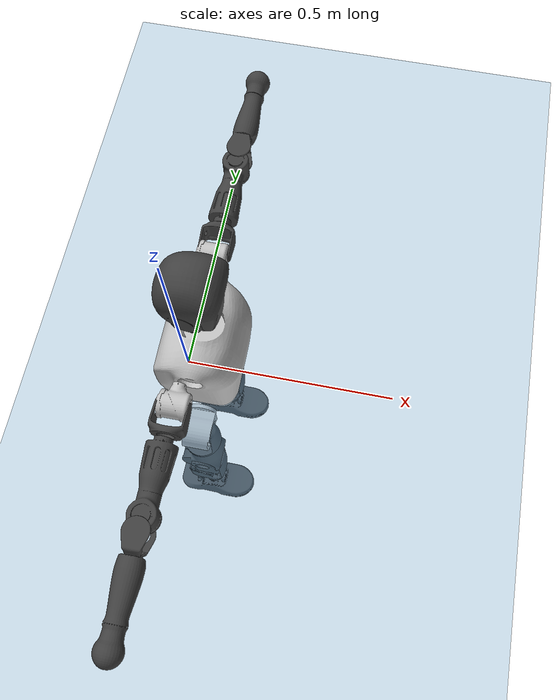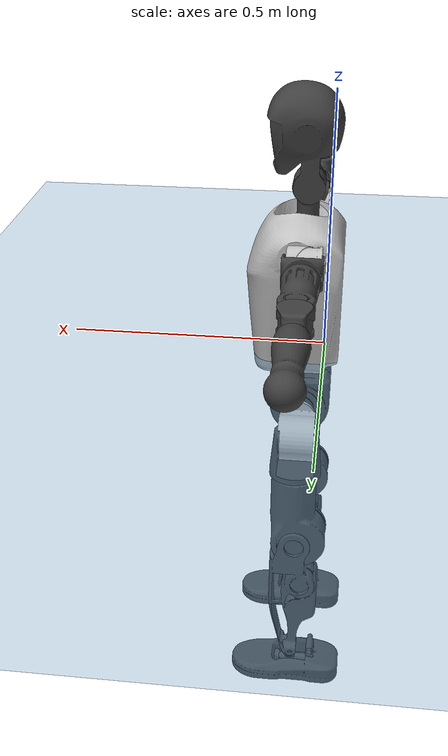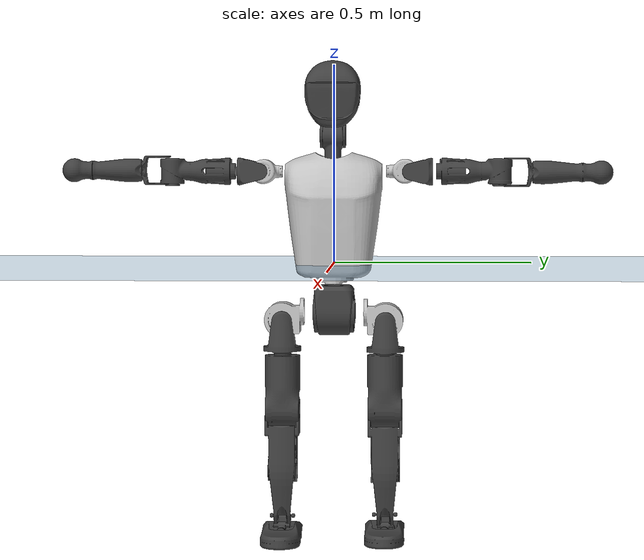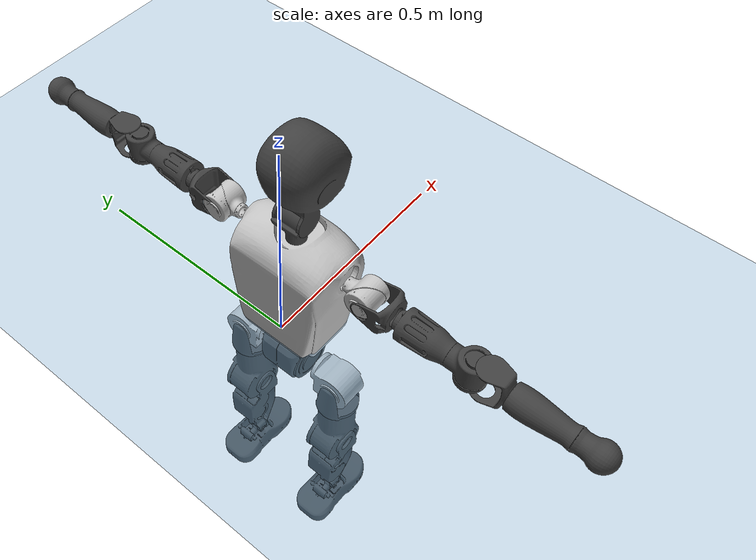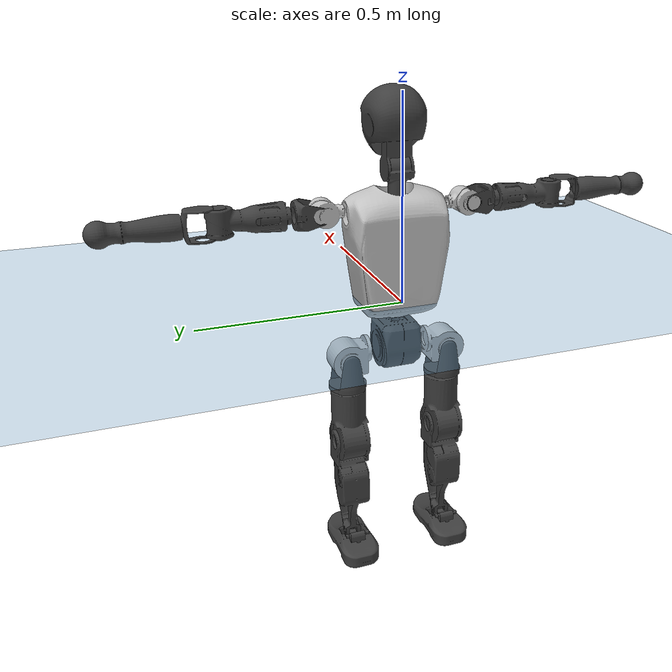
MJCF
<mujoco model="T1">
  <compiler angle="radian" assetdir="assets" balanceinertia="true" inertiafromgeom="false"/>

  <option timestep="0.005" density="1.2" viscosity="2e-05"/>

  <size nkey="1"/>

  <visual>
    <quality shadowsize="8192"/>
    <map shadowclip="0.5"/>
  </visual>

  <default>
    <default class="/">
      <joint armature="0.01" damping="0.01" frictionloss="0.1"/>
      <geom contype="0" conaffinity="0" group="1" solref="-1000 -80"/>
      <site size="0.01 0.005 0.005" group="5"/>
      <general forcelimited="true" biastype="affine" gainprm="25" biasprm="0 -25 -0.6"/>
      <default class="t1">
        <geom rgba="0.25 0.25 0.25 1"/>
        <default class="visual">
          <geom type="mesh" group="2"/>
        </default>
        <default class="collision">
          <geom group="3"/>
        </default>
        <default class="foot">
          <geom size="0.1115 0.05 0.015" type="box" condim="6" group="4" priority="1" solimp="0.015 1 0.015"/>
        </default>
        <default class="reward_collision_sphere">
          <geom group="5" rgba="1 0 0 1"/>
        </default>
      </default>
    </default>
  </default>

  <asset>
    <texture type="skybox" colorspace="auto" name="//unnamed_texture_0" builtin="gradient" rgb1="0.95 0.95 0.95" rgb2="0.95 0.95 0.95" width="100" height="600"/>
    <texture type="2d" colorspace="auto" name="texplane" builtin="checker" rgb1="0.345 0.575 0.748" rgb2="0.345 0.575 0.748" markrgb="1 1 1" width="512" height="512"/>
    <material name="MatPlane" class="/" texture="texplane" texuniform="true" texrepeat="2 2" specular="0.9"/>
    <mesh name="Trunk" class="/" file="Trunk.stl"/>
    <mesh name="H1" class="/" file="H1.stl"/>
    <mesh name="H2" class="/" file="H2.stl"/>
    <mesh name="AL1" class="/" file="AL1.stl"/>
    <mesh name="AL2" class="/" file="AL2.stl"/>
    <mesh name="AL3" class="/" file="AL3.stl"/>
    <mesh name="left_hand_link" class="/" file="left_hand_link.stl"/>
    <mesh name="AR1" class="/" file="AR1.stl"/>
    <mesh name="AR2" class="/" file="AR2.stl"/>
    <mesh name="AR3" class="/" file="AR3.stl"/>
    <mesh name="right_hand_link" class="/" file="right_hand_link.stl"/>
    <mesh name="Waist" class="/" file="Waist.stl"/>
    <mesh name="Hip_Pitch_Left" class="/" file="Hip_Pitch_Left.stl"/>
    <mesh name="Hip_Roll_Left" class="/" file="Hip_Roll_Left.stl"/>
    <mesh name="Hip_Yaw_Left" class="/" file="Hip_Yaw_Left.stl"/>
    <mesh name="Shank_Left" class="/" file="Shank_Left.stl"/>
    <mesh name="Ankle_Cross_Left" class="/" file="Ankle_Cross_Left.stl"/>
    <mesh name="left_foot_link" class="/" file="left_foot_link.stl"/>
    <mesh name="Hip_Pitch_Right" class="/" file="Hip_Pitch_Right.stl"/>
    <mesh name="Hip_Roll_Right" class="/" file="Hip_Roll_Right.stl"/>
    <mesh name="Hip_Yaw_Right" class="/" file="Hip_Yaw_Right.stl"/>
    <mesh name="Shank_Right" class="/" file="Shank_Right.stl"/>
    <mesh name="Ankle_Cross_Right" class="/" file="Ankle_Cross_Right.stl"/>
    <mesh name="right_foot_link" class="/" file="right_foot_link.stl"/>
  </asset>

  <worldbody>
    <geom name="floor" class="/" size="100 100 0.125" type="plane" group="0" material="MatPlane"/>
    <light name="toplight_shadow" class="/" pos="0 0 5" dir="0.0990148 0.0990148 -0.990148" type="directional" ambient="0.04 0.04 0.04" diffuse="0.55 0.55 0.55" specular="0.12 0.12 0.12"/>
    <light name="toplight_fill" class="/" pos="0 0 5" dir="0.0990148 0.0990148 -0.990148" type="directional" castshadow="false" ambient="0.04 0.04 0.04" diffuse="0.3 0.3 0.3" specular="0.08 0.08 0.08"/>
    <body name="trunk" childclass="t1" pos="-0.000157538 0.000786063 0.000939344" quat="1 -6.1891e-06 -0.000102619 3.88444e-05">
      <inertial pos="0.0385554 0.00229466 0.113251" quat="0.999967 0.00352109 -0.00648347 -0.00352367" mass="11.6649" diaginertia="0.0154379 0.220379 0.0735805"/>
      <joint name="//unnamed_joint_0" type="free" armature="0" damping="0" frictionloss="0"/>
      <geom name="//unnamed_geom_1" class="visual" rgba="0.76 0.76 0.76 1" mesh="Trunk"/>
      <geom name="//unnamed_geom_2" class="collision" size="0.0747203 0.0996271 0.149441" pos="0.0420232 0 0.126545" type="box"/>
      <geom name="//unnamed_geom_3" class="reward_collision_sphere" size="0.114571" pos="0.0420232 0 0.105455"/>
      <geom name="//unnamed_geom_4" class="reward_collision_sphere" size="0.0149441" pos="0.0420232 0.10488 0"/>
      <geom name="//unnamed_geom_5" class="reward_collision_sphere" size="0.0149441" pos="0.0420232 -0.10488 0"/>
      <geom name="//unnamed_geom_6" class="reward_collision_sphere" size="0.0149441" pos="0.0420232 0.132025 0.189818"/>
      <geom name="//unnamed_geom_7" class="reward_collision_sphere" size="0.0149441" pos="0.0420232 -0.132025 0.189818"/>
      <site name="imu" pos="-0.00249793 0.000609806 -0.00527642" size="0.00996271"/>
      <camera name="track" pos="0 -2.46776 0" quat="0.707107 0.707107 0 0" mode="trackcom"/>
      <camera name="ego_camera" pos="0.0854473 0 0.442909" quat="-0.5 -0.5 0.5 0.5"/>
      <body name="H1" pos="0.0436791 -0.00250972 0.258113" quat="1 4.26193e-05 3.5402e-06 -2.20669e-06">
        <inertial pos="-0.000804447 0.000795452 0.0611863" quat="0.763135 -0.0203646 -0.00748324 0.645875" mass="0.426462" diaginertia="3.95211e-05 0.000622004 0.000196797"/>
        <joint name="AAHead_yaw" pos="0 0 0" axis="0.00011239 -0.00283407 0.999996" range="-1.57123 1.52102" armature="0.00978551" damping="0.0194306" frictionloss="0.086533"/>
        <geom name="//unnamed_geom_8" class="visual" mesh="H1"/>
        <body name="H2" pos="-0.00136218 0.000645406 0.0627916" quat="1 -9.62408e-05 0.00014273 -0.000232639">
          <inertial pos="0.00590683 -0.00123345 0.104996" quat="0.990275 0.0989528 -0.0670944 -0.0711485" mass="0.629824" diaginertia="0.000342984 0.00554733 0.00230926"/>
          <joint name="Head_pitch" pos="0 0 0" axis="0.00462998 -0.999988 0.00151102" range="-1.23297 0.347669" armature="0.0100688" damping="0.0113457" frictionloss="0.094357"/>
          <geom name="//unnamed_geom_9" class="visual" mesh="H2"/>
          <geom name="//unnamed_geom_10" class="collision" size="0.0797017" pos="0.00700387 0 0.116"/>
          <geom name="//unnamed_geom_11" class="reward_collision_sphere" size="0.0896644" pos="0.0140077 0 0.105455"/>
        </body>
      </body>
      <body name="AL1" pos="0.0401582 0.132251 0.231148" quat="0.999999 -0.00109404 -8.73189e-05 -0.000569713">
        <inertial pos="-0.000476002 0.0554776 0.0002641" quat="0.500374 0.494241 -0.498766 0.506541" mass="0.519744" diaginertia="0.000227436 0.00380655 0.000383159"/>
        <joint name="Left_Shoulder_Pitch" pos="0 0 0" axis="9.5154e-05 1 0.000267536" stiffness="0.00348469" range="-3.33009 1.26417" armature="0.00991079" damping="0.0124528" frictionloss="0.100092"/>
        <geom name="//unnamed_geom_12" class="visual" rgba="0.76 0.76 0.76 1" mesh="AL1"/>
        <body name="AL2" pos="0.000829975 0.0610013 -0.000946543" quat="1 -0.000375697 -0.000199405 0.000106731">
          <inertial pos="0.00525643 0.0493709 0.000257979" quat="0.49875 0.507269 -0.481789 0.51167" mass="0.158682" diaginertia="6.81957e-05 0.000994616 0.000238908"/>
          <joint name="Left_Shoulder_Roll" pos="0 0 0" axis="-0.999996 -0.00265833 -0.000192828" stiffness="0.00115266" range="-1.57488 1.73974" armature="0.00930752" damping="0.0108958" frictionloss="0.104061"/>
          <geom name="//unnamed_geom_13" class="visual" mesh="AL2"/>
          <body name="AL3" pos="0.000401918 0.0776539 0.00111562" quat="1 -3.19614e-05 4.93115e-05 9.50923e-05">
            <inertial pos="-0.00274842 0.105863 -0.000877095" quat="0.70942 0.704777 0.00326548 0.00165284" mass="1.05647" diaginertia="0.00225491 0.0372019 0.000819965"/>
            <joint name="Left_Elbow_Pitch" pos="0 0 0" axis="0.000459617 -1 -0.000591297" range="-2.28268 2.31907" armature="0.0103877" damping="0.0174761" frictionloss="0.0988741"/>
            <geom name="//unnamed_geom_14" class="visual" mesh="AL3"/>
            <geom name="//unnamed_geom_15" class="collision" size="0.0298881 0.0747203" pos="0 0.0616941 0" quat="0.707105 0.707108 0 0" type="cylinder"/>
            <geom name="//unnamed_geom_16" class="reward_collision_sphere" size="0.0358658"/>
            <body name="left_hand_link" pos="6.52954e-05 0.184465 -0.00191295" quat="1 -6.0288e-05 -0.000184146 0.000103839">
              <inertial pos="0.000476624 0.135439 0.00101215" quat="0.707968 0.706223 -0.00227275 -0.00496389" mass="0.321517" diaginertia="0.00134039 0.0231625 0.000281386"/>
              <joint name="Left_Elbow_Yaw" pos="0 0 0" axis="-0.00798067 0.00129074 0.999967" stiffness="0.00902866" range="-2.49469 -0.0126602" armature="0.0101106" damping="0" frictionloss="0.10907"/>
              <geom name="//unnamed_geom_17" class="visual" mesh="left_hand_link"/>
              <geom name="//unnamed_geom_18" class="collision" size="0.0298881 0.0871737" pos="0 0.160405 0" quat="0.707105 0.707108 0 0" type="cylinder"/>
              <geom name="//unnamed_geom_19" class="reward_collision_sphere" size="0.0498136"/>
              <geom name="//unnamed_geom_20" class="reward_collision_sphere" size="0.0348695" pos="0 0.135727 0"/>
              <geom name="//unnamed_geom_21" class="reward_collision_sphere" size="0.0348695" pos="0 0.265284 0"/>
            </body>
          </body>
        </body>
      </body>
      <body name="AR1" pos="0.0385971 -0.130418 0.229984" quat="1 -0.000136688 3.05844e-05 3.92615e-05">
        <inertial pos="-0.0017051 -0.0555018 -0.00267208" quat="0.51141 0.48594 -0.502932 0.499381" mass="0.534542" diaginertia="0.000229072 0.00366609 0.000385192"/>
        <joint name="Right_Shoulder_Pitch" pos="0 0 0" axis="0.00250244 -0.999996 0.00135634" stiffness="0.00780105" range="-1.22754 3.31007" armature="0.0100486" damping="0" frictionloss="0.0865221"/>
        <geom name="//unnamed_geom_22" class="visual" rgba="0.76 0.76 0.76 1" mesh="AR1"/>
        <body name="AR2" pos="-0.00201071 -0.0571401 0.000183815" quat="1 5.39187e-05 3.91772e-05 -4.0698e-05">
          <inertial pos="0.00216833 -0.049421 -0.000700698" quat="0.519946 0.489746 -0.502124 0.487521" mass="0.157241" diaginertia="6.73858e-05 0.000973995 0.000230563"/>
          <joint name="Right_Shoulder_Roll" pos="0 0 0" axis="-0.999993 -0.00332334 -0.00150789" stiffness="0.00728031" range="-1.73626 1.57255" armature="0.0100474" damping="0" frictionloss="0.0943641"/>
          <geom name="//unnamed_geom_23" class="visual" mesh="AR2"/>
          <body name="AR3" pos="-0.00145245 -0.0743373 0.000344014" quat="1 -0.000166279 -4.48612e-05 0.000340617">
            <inertial pos="-0.00132002 -0.105535 0.000886775" quat="0.708468 0.705725 0.00379343 0.00332854" mass="1.01713" diaginertia="0.0021888 0.0356681 0.000825198"/>
            <joint name="Right_Elbow_Pitch" pos="0 0 0" axis="-0.00227763 0.999993 0.00301908" range="-2.26674 2.24668" armature="0.00986712" damping="0.00871239" frictionloss="0.0956018"/>
            <geom name="//unnamed_geom_24" class="visual" mesh="AR3"/>
            <geom name="//unnamed_geom_25" class="collision" size="0.0298881 0.0747203" pos="0 -0.0616941 0" quat="0.707105 0.707108 0 0" type="cylinder"/>
            <geom name="//unnamed_geom_26" class="reward_collision_sphere" size="0.0358658"/>
            <body name="right_hand_link" pos="-0.00140519 -0.179358 0.00225507" quat="1 0.000322871 -0.000292131 -0.000421649">
              <inertial pos="-0.000326988 -0.133745 5.63783e-05" quat="0.708188 0.706012 0.0040718 -0.000240844" mass="0.329492" diaginertia="0.00136662 0.0230951 0.000282243"/>
              <joint name="Right_Elbow_Yaw" pos="0 0 0" axis="-0.0019202 0.00022458 0.999998" range="0.0181916 2.4373" armature="0.00976042" damping="0.00806865" frictionloss="0.112497"/>
              <geom name="//unnamed_geom_27" class="visual" mesh="right_hand_link"/>
              <geom name="//unnamed_geom_28" class="collision" size="0.0298881 0.0871737" pos="0 -0.160405 0" quat="0.707105 0.707108 0 0" type="cylinder"/>
              <geom name="//unnamed_geom_29" class="reward_collision_sphere" size="0.0498136"/>
              <geom name="//unnamed_geom_30" class="reward_collision_sphere" size="0.0348695" pos="0 -0.135727 0"/>
              <geom name="//unnamed_geom_31" class="reward_collision_sphere" size="0.0348695" pos="0 -0.265284 0"/>
            </body>
          </body>
        </body>
      </body>
      <body name="Waist" pos="0.0424771 0.000678536 -0.123744" quat="1 -2.10004e-05 -4.79845e-05 -2.11279e-05">
        <inertial pos="-0.00125758 -0.00146376 0.00687544" quat="0.983691 0.000151759 -0.179849 0.00264143" mass="2.48158" diaginertia="0.00086858 0.0149453 0.00607659"/>
        <joint name="Waist" pos="0 0 0" axis="0.00205927 -0.00478053 0.999986" stiffness="0.00207354" range="-1.57849 1.56246" armature="0.0105824" damping="0.0161357" frictionloss="0.10001"/>
        <geom name="//unnamed_geom_32" class="visual" mesh="Waist"/>
        <body name="Hip_Pitch_Left" pos="-0.000408927 0.130275 -0.00203918" quat="1 -7.1059e-05 0.00027442 0.000125866">
          <inertial pos="0.000512829 -0.00733983 -0.0179903" quat="0.974862 0.222429 0.0127149 0.00272889" mass="1.03836" diaginertia="0.000303881 0.00422061 0.00162269"/>
          <joint name="Left_Hip_Pitch" pos="0 0 0" axis="0.00317279 0.999995 0.000135659" stiffness="0.000440253" range="-1.80015 1.62204" armature="0.0112315" damping="0.013806" frictionloss="0.0955123"/>
          <geom name="//unnamed_geom_33" class="visual" rgba="0.76 0.76 0.76 1" mesh="Hip_Pitch_Left"/>
          <body name="Hip_Roll_Left" pos="0.00235455 -0.000871419 -0.0228549" quat="1 0.00046666 0.000118474 6.64792e-05">
            <inertial pos="0.00106306 -0.000267005 -0.0568342" quat="0.703885 -0.0103188 -0.0176202 0.71002" mass="0.364402" diaginertia="0.000283217 0.00430482 0.000663781"/>
            <joint name="Left_Hip_Roll" pos="0 0 0" axis="-0.999959 -5.57426e-05 0.00909758" stiffness="0.0064177" range="-1.5696 0.18519" armature="0.0112175" damping="0.0169256" frictionloss="0.0972158"/>
            <geom name="//unnamed_geom_34" class="visual" mesh="Hip_Roll_Left"/>
            <geom name="//unnamed_geom_35" class="reward_collision_sphere" size="0.0547949"/>
            <body name="Hip_Yaw_Left" pos="-0.00113439 -0.00107744 -0.0842265" quat="1 0.000286662 6.52935e-05 -0.000219011">
              <inertial pos="-0.0070273 -0.00134663 -0.0934618" quat="0.69671 -0.0342578 -0.0314876 0.715843" mass="2.164" diaginertia="0.0043027 0.0698175 0.00335177"/>
              <joint name="Left_Hip_Yaw" pos="0 0 0" axis="0.0031149 0.00150176 -0.999994" stiffness="0.00295398" range="-1.01879 1.0552" armature="0.00987657" damping="0.00516833" frictionloss="0.101089"/>
              <geom name="//unnamed_geom_36" class="visual" mesh="Hip_Yaw_Left"/>
              <geom name="//unnamed_geom_37" class="collision" size="0.0498136 0.0797017" type="cylinder"/>
              <body name="Shank_Left" pos="-0.006886 -2.98932e-05 -0.142758" quat="1 3.71684e-05 -9.78735e-05 0.000127053">
                <inertial pos="-0.00344674 0.0026518 -0.128826" quat="0.997573 0.00141901 -0.0239519 0.0653595" mass="1.64449" diaginertia="0.00581165 0.0983551 0.00237761"/>
                <joint name="Left_Knee_Pitch" pos="0 0 0" axis="0.00315081 0.999989 -0.00360875" range="-0.00353771 2.34555" armature="0.00992932" damping="0.0117063" frictionloss="0.104668"/>
                <geom name="//unnamed_geom_38" class="visual" mesh="Shank_Left"/>
                <geom name="//unnamed_geom_39" class="collision" size="0.0498136 0.0747203" pos="0 0 -0.126545" type="cylinder"/>
                <geom name="//unnamed_geom_40" class="reward_collision_sphere" size="0.0647576"/>
                <body name="Ankle_Cross_Left" pos="-0.00100558 -7.9353e-05 -0.293588" quat="1 3.46895e-05 5.08787e-06 -2.47572e-05">
                  <inertial pos="-0.00209115 0.0016902 -0.00805286" quat="0.446975 0.550967 0.544458 0.447453" mass="0.0738546" diaginertia="5.01723e-06 7.24108e-05 1.47487e-05"/>
                  <joint name="Left_Ankle_Pitch" pos="0 0 0" axis="8.07177e-05 1 7.55933e-05" range="-0.818613 0.335504" armature="0.00989505" damping="0.015489" frictionloss="0.0945454"/>
                  <geom name="//unnamed_geom_41" class="visual" mesh="Ankle_Cross_Left"/>
                  <body name="left_foot_link" pos="0.0010495 -0.00137495 -0.0108" quat="1 5.3167e-05 0.000120545 8.608e-05">
                    <inertial pos="-0.00195211 -0.000185087 -0.0116682" quat="0.000259221 0.619242 -0.00470328 0.785186" mass="0.662027" diaginertia="0.000428026 0.00666935 0.00286124"/>
                    <joint name="Left_Ankle_Roll" pos="0 0 0" axis="-0.999999 -0.00121741 -0.00032113" range="-0.431503 0.439125" armature="0.0101002" damping="0.0162204" frictionloss="0.0998968"/>
                    <geom name="//unnamed_geom_42" class="visual" mesh="left_foot_link"/>
                    <geom name="left_foot" class="foot" size="0.104198 0.0486225 0.0154715" pos="0.00700387 0 -0.0158182"/>
                    <geom name="//unnamed_geom_44" class="reward_collision_sphere" size="0.0518061" pos="0.00700387 0 -0.0158182"/>
                    <geom name="//unnamed_geom_45" class="reward_collision_sphere" size="0.0298881" pos="0.0665368 -0.0283793 -0.0158182"/>
                    <geom name="//unnamed_geom_46" class="reward_collision_sphere" size="0.0298881" pos="-0.0490271 -0.0283793 -0.0158182"/>
                    <site name="left_foot" class="foot" pos="0.00700387 0 -0.0158182" size="0.00996271"/>
                  </body>
                </body>
              </body>
            </body>
          </body>
        </body>
        <body name="Hip_Pitch_Right" pos="-0.00030649 -0.13171 5.1435e-05" quat="1 -0.000583209 -0.000618706 -0.000485599">
          <inertial pos="-0.00164637 0.0103183 -0.0165062" quat="0.972652 -0.231467 0.0180616 -0.0067014" mass="1.02771" diaginertia="0.000309602 0.00431205 0.00160242"/>
          <joint name="Right_Hip_Pitch" pos="0 0 0" axis="-0.000956867 -0.999999 0.000434057" range="-1.5692 1.74583" armature="0.00934358" damping="0.0111308" frictionloss="0.0995178"/>
          <geom name="//unnamed_geom_47" class="visual" rgba="0.76 0.76 0.76 1" mesh="Hip_Pitch_Right"/>
          <body name="Hip_Roll_Right" pos="0.0022456 0.000465342 -0.0228241" quat="1 -0.000218995 -0.000170508 -5.12883e-06">
            <inertial pos="0.0011005 -0.00111561 -0.0554842" quat="0.71435 -0.0135539 -0.00323246 0.69965" mass="0.386719" diaginertia="0.000294398 0.00448869 0.000675689"/>
            <joint name="Right_Hip_Roll" pos="0 0 0" axis="-0.999989 -0.000960004 0.00454239" stiffness="0.000866486" range="-0.148598 1.59399" armature="0.0100504" damping="0.00820805" frictionloss="0.100745"/>
            <geom name="//unnamed_geom_48" class="visual" mesh="Hip_Roll_Right"/>
            <geom name="//unnamed_geom_49" class="reward_collision_sphere" size="0.0547949"/>
            <body name="Hip_Yaw_Right" pos="0.000967169 0.00102827 -0.087461" quat="1 -0.000402959 8.64603e-05 -1.61699e-05">
              <inertial pos="-0.00479275 -0.000781548 -0.0967334" quat="0.717557 -0.0324865 -0.0344976 0.694886" mass="2.0943" diaginertia="0.00431419 0.0720168 0.00330903"/>
              <joint name="Right_Hip_Yaw" pos="0 0 0" axis="0.00844226 0.0133184 -0.999876" stiffness="0.00402932" range="-1.00792 0.987839" armature="0.011091" damping="0" frictionloss="0.100037"/>
              <geom name="//unnamed_geom_50" class="visual" mesh="Hip_Yaw_Right"/>
              <geom name="//unnamed_geom_51" class="collision" size="0.0498136 0.0797017" type="cylinder"/>
              <body name="Shank_Right" pos="-0.00898683 -0.000647154 -0.139465" quat="1 0.000177523 4.4124e-05 0.000191894">
                <inertial pos="-0.00431164 -0.00103831 -0.131316" quat="0.99928 -0.000672276 -0.0236243 -0.0296902" mass="1.83293" diaginertia="0.00620363 0.102646 0.00263072"/>
                <joint name="Right_Knee_Pitch" pos="0 0 0" axis="-0.00344763 -0.999994 -0.000482047" range="-2.29023 -0.0154409" armature="0.0112427" damping="0.0141241" frictionloss="0.0993943"/>
                <geom name="//unnamed_geom_52" class="visual" mesh="Shank_Right"/>
                <geom name="//unnamed_geom_53" class="collision" size="0.0498136 0.0747203" pos="0 0 -0.126545" type="cylinder"/>
                <geom name="//unnamed_geom_54" class="reward_collision_sphere" size="0.0647576"/>
                <body name="Ankle_Cross_Right" pos="-0.000218236 -0.00147095 -0.296236" quat="1 -0.000173334 -4.60144e-05 -0.000102763">
                  <inertial pos="-0.00232859 -0.000758374 -0.00848949" quat="0.445041 0.549543 0.549061 0.445504" mass="0.0718653" diaginertia="4.99049e-06 7.48074e-05 1.47664e-05"/>
                  <joint name="Right_Ankle_Pitch" pos="0 0 0" axis="0.000132101 -0.999999 -0.00119212" range="-0.395364 0.821897" armature="0.00999089" damping="0.00875116" frictionloss="0.104384"/>
                  <geom name="//unnamed_geom_55" class="visual" mesh="Ankle_Cross_Right"/>
                  <body name="right_foot_link" pos="0.0027111 -0.000795189 -0.0133954" quat="1 -3.02303e-06 1.13938e-05 -8.78964e-05">
                    <inertial pos="-0.00272085 0.000781545 -0.00941001" quat="-0.000843637 0.620736 -0.000550442 0.784019" mass="0.682842" diaginertia="0.0004579 0.00670772 0.00288436"/>
                    <joint name="Right_Ankle_Roll" pos="0 0 0" axis="-0.999989 -0.00469134 4.52222e-05" range="-0.490739 0.438438" armature="0.00996354" damping="0" frictionloss="0.0979118"/>
                    <geom name="//unnamed_geom_56" class="visual" mesh="right_foot_link"/>
                    <geom name="right_foot" class="foot" size="0.101704 0.0459175 0.015188" pos="0.00700387 0 -0.0158182"/>
                    <geom name="//unnamed_geom_58" class="reward_collision_sphere" size="0.0398508"/>
                    <geom name="//unnamed_geom_59" class="reward_collision_sphere" size="0.0298881" pos="0.00700387 0 -0.0158182"/>
                    <geom name="//unnamed_geom_60" class="reward_collision_sphere" size="0.0298881" pos="0.0665368 0.0283793 -0.0158182"/>
                    <geom name="//unnamed_geom_61" class="reward_collision_sphere" size="0.0298881" pos="-0.0490271 0.0283793 -0.0158182"/>
                    <site name="right_foot" class="foot" pos="0.00700387 0 -0.0158182" size="0.00996271"/>
                  </body>
                </body>
              </body>
            </body>
          </body>
        </body>
      </body>
    </body>
  </worldbody>

  <contact>
    <pair class="/" geom1="floor" geom2="left_foot" name="//unnamed_contact_0"/>
    <pair class="/" geom1="floor" geom2="right_foot" name="//unnamed_contact_1"/>
  </contact>

  <actuator>
    <general name="AAHead_yaw" class="/" joint="AAHead_yaw" forcerange="-6.6966 6.6966" gainprm="23.9076" biasprm="0 -23.9076 -0.589395"/>
    <general name="Head_pitch" class="/" joint="Head_pitch" forcerange="-6.93684 6.93684" gainprm="23.9076" biasprm="0 -23.9076 -0.589395"/>
    <general name="Left_Shoulder_Pitch" class="/" joint="Left_Shoulder_Pitch" forcerange="-17.3996 17.3996" gainprm="23.9076" biasprm="0 -23.9076 -0.589395"/>
    <general name="Left_Shoulder_Roll" class="/" joint="Left_Shoulder_Roll" forcerange="-18.4712 18.4712" gainprm="23.9076" biasprm="0 -23.9076 -0.589395"/>
    <general name="Left_Elbow_Pitch" class="/" joint="Left_Elbow_Pitch" forcerange="-18.1843 18.1843" gainprm="23.9076" biasprm="0 -23.9076 -0.589395"/>
    <general name="Left_Elbow_Yaw" class="/" joint="Left_Elbow_Yaw" forcerange="-18.7399 18.7399" gainprm="23.9076" biasprm="0 -23.9076 -0.589395"/>
    <general name="Right_Shoulder_Pitch" class="/" joint="Right_Shoulder_Pitch" forcerange="-17.4007 17.4007" gainprm="23.9076" biasprm="0 -23.9076 -0.589395"/>
    <general name="Right_Shoulder_Roll" class="/" joint="Right_Shoulder_Roll" forcerange="-17.6848 17.6848" gainprm="23.9076" biasprm="0 -23.9076 -0.589395"/>
    <general name="Right_Elbow_Pitch" class="/" joint="Right_Elbow_Pitch" forcerange="-19.6711 19.6711" gainprm="23.9076" biasprm="0 -23.9076 -0.589395"/>
    <general name="Right_Elbow_Yaw" class="/" joint="Right_Elbow_Yaw" forcerange="-17.2122 17.2122" gainprm="23.9076" biasprm="0 -23.9076 -0.589395"/>
    <general name="Waist" class="/" joint="Waist" forcerange="-29.2091 29.2091" gainprm="23.9076" biasprm="0 -23.9076 -0.589395"/>
    <general name="Left_Hip_Pitch" class="/" joint="Left_Hip_Pitch" forcerange="-45.3271 45.3271" gainprm="23.9076" biasprm="0 -23.9076 -0.589395"/>
    <general name="Left_Hip_Roll" class="/" joint="Left_Hip_Roll" forcerange="-31.8705 31.8705" gainprm="23.9076" biasprm="0 -23.9076 -0.589395"/>
    <general name="Left_Hip_Yaw" class="/" joint="Left_Hip_Yaw" forcerange="-27.6204 27.6204" gainprm="23.9076" biasprm="0 -23.9076 -0.589395"/>
    <general name="Left_Knee_Pitch" class="/" joint="Left_Knee_Pitch" forcerange="-58.7462 58.7462" gainprm="23.9076" biasprm="0 -23.9076 -0.589395"/>
    <general name="Left_Ankle_Pitch" class="/" joint="Left_Ankle_Pitch" forcerange="-20.1393 20.1393" gainprm="23.9076" biasprm="0 -23.9076 -0.589395"/>
    <general name="Left_Ankle_Roll" class="/" joint="Left_Ankle_Roll" forcerange="-16.2631 16.2631" gainprm="23.9076" biasprm="0 -23.9076 -0.589395"/>
    <general name="Right_Hip_Pitch" class="/" joint="Right_Hip_Pitch" forcerange="-44.8388 44.8388" gainprm="23.9076" biasprm="0 -23.9076 -0.589395"/>
    <general name="Right_Hip_Roll" class="/" joint="Right_Hip_Roll" forcerange="-29.6742 29.6742" gainprm="23.9076" biasprm="0 -23.9076 -0.589395"/>
    <general name="Right_Hip_Yaw" class="/" joint="Right_Hip_Yaw" forcerange="-32.8704 32.8704" gainprm="23.9076" biasprm="0 -23.9076 -0.589395"/>
    <general name="Right_Knee_Pitch" class="/" joint="Right_Knee_Pitch" forcerange="-59.7253 59.7253" gainprm="23.9076" biasprm="0 -23.9076 -0.589395"/>
    <general name="Right_Ankle_Pitch" class="/" joint="Right_Ankle_Pitch" forcerange="-20.5755 20.5755" gainprm="23.9076" biasprm="0 -23.9076 -0.589395"/>
    <general name="Right_Ankle_Roll" class="/" joint="Right_Ankle_Roll" forcerange="-14.5751 14.5751" gainprm="23.9076" biasprm="0 -23.9076 -0.589395"/>
  </actuator>

  <sensor>
    <gyro site="imu" name="imu_angular_velocity"/>
    <velocimeter site="imu" name="imu_linear_velocity"/>
    <framelinvel objtype="site" objname="left_foot" name="left_foot_global_linear_velocity"/>
    <framelinvel objtype="site" objname="right_foot" name="right_foot_global_linear_velocity"/>
  </sensor>

  <keyframe>
    <key name="home" qpos="0 0 0.6385 1 0 0 0 0 0 0 1.4 0 -0.4 0 -1.4 0 0.4 0 -0.4 0 0 0.8 -0.4 0 0.4 0 0 -0.8 0.4 0"/>
  </keyframe>
</mujoco>
